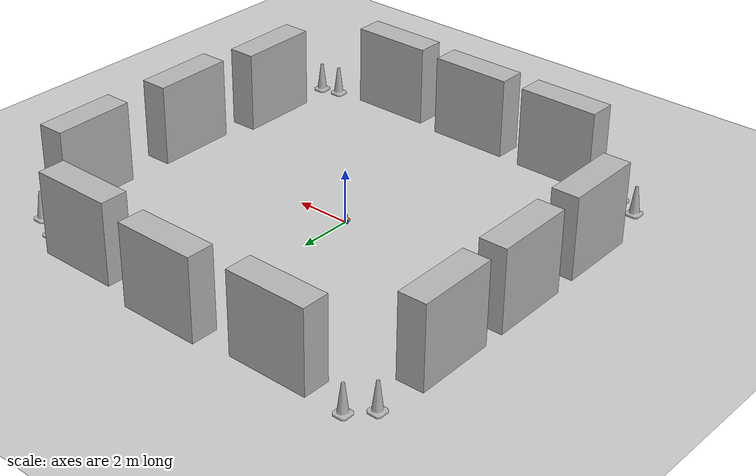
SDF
<sdf version="1.7">
 <world name="default">
  <light name="sun" type="directional">
   <pose>0 0 10 0 -0 0</pose>
   <diffuse>0.8 0.8 0.8 1</diffuse>
   <specular>0.2 0.2 0.2 1</specular>
   <attenuation>
    <range>1000</range>
    <constant>0.9</constant>
    <linear>0.01</linear>
    <quadratic>0.001</quadratic>
   </attenuation>
   <direction>-0.5 0.1 -0.9</direction>
   <spot><inner_angle>0</inner_angle><outer_angle>0</outer_angle><falloff>0</falloff></spot>
  </light>
  <model name="ground_plane">
   <static>1</static>
   <link name="link">
    <collision name="collision">
     <geometry><plane><normal>0 0 1</normal><size>100 100</size></plane></geometry>
     <surface>
      <contact><collide_bitmask>65535</collide_bitmask></contact>
      <friction><ode><mu>100</mu><mu2>50</mu2></ode></friction>
     </surface>
    </collision>
    <visual name="visual">
     <cast_shadows>0</cast_shadows>
     <geometry><plane><normal>0 0 1</normal><size>100 100</size></plane></geometry>
     <material>
      <script><uri>file://media/materials/scripts/gazebo.material</uri><name>Gazebo/Grey</name></script>
     </material>
    </visual>
   </link>
  </model>
  <gravity>0 0 -9.8</gravity>
  <magnetic_field>6e-06 2.3e-05 -4.2e-05</magnetic_field>
  <atmosphere type="adiabatic"/>
  <physics type="ode">
   <max_step_size>0.001</max_step_size>
   <real_time_factor>1</real_time_factor>
   <real_time_update_rate>1000</real_time_update_rate>
  </physics>
  <scene><ambient>0.4 0.4 0.4 1</ambient><background>0.7 0.7 0.7 1</background><shadows>1</shadows></scene>
  <spherical_coordinates>
   <surface_model>EARTH_WGS84</surface_model>
   <latitude_deg>0</latitude_deg>
   <longitude_deg>0</longitude_deg>
   <elevation>0</elevation>
   <heading_deg>0</heading_deg>
  </spherical_coordinates>
  <model name="my_bot">
   <link name="base_link">
    <inertial>
     <pose>0.039607 0 0.054361 0 -0 0</pose>
     <mass>0.61</mass>
     <inertia>
      <ixx>0.00444629</ixx>
      <ixy>0</ixy>
      <ixz>-0.000240607</ixz>
      <iyy>0.00451896</iyy>
      <iyz>0</iyz>
      <izz>0.00353276</izz>
     </inertia>
    </inertial>
    <collision name="base_link_fixed_joint_lump__chassis_collision">
     <pose>0.035 0 0.029 0 -0 0</pose>
     <geometry><box><size>0.2 0.2 0.1</size></box></geometry>
    </collision>
    <collision name="base_link_fixed_joint_lump__caster_wheel_collision_1">
     <pose>0.096 0 -0.044 0 -0 0</pose>
     <geometry><sphere><radius>0.021</radius></sphere></geometry>
     <surface><friction><ode><mu>0.001</mu><mu2>0.001</mu2></ode></friction></surface>
    </collision>
    <collision name="base_link_fixed_joint_lump__laser_frame_collision_2">
     <pose>0.057 0 0.191 0 -0 0</pose>
     <geometry><cylinder><length>0.04</length><radius>0.05</radius></cylinder></geometry>
    </collision>
    <visual name="base_link_fixed_joint_lump__chassis_visual">
     <pose>0.035 0 0.029 0 -0 0</pose>
     <geometry><box><size>0.2 0.2 0.1</size></box></geometry>
     <material>
      <script><name>Gazebo/Orange</name><uri>file://media/materials/scripts/gazebo.material</uri></script>
     </material>
    </visual>
    <visual name="base_link_fixed_joint_lump__camera_link_visual_1">
     <pose>0.111 0 0.12 0 0.18 0</pose>
     <geometry><box><size>0.01 0.03 0.03</size></box></geometry>
     <material>
      <script><name>Gazebo/Black</name><uri>file://media/materials/scripts/gazebo.material</uri></script>
     </material>
    </visual>
    <visual name="base_link_fixed_joint_lump__camera_link_visual_2">
     <pose>0.102049 0 0.070808 0 0.18 0</pose>
     <geometry><cylinder><length>0.1</length><radius>0.002</radius></cylinder></geometry>
     <material>
      <script><name>Gazebo/Black</name><uri>file://media/materials/scripts/gazebo.material</uri></script>
     </material>
    </visual>
    <visual name="base_link_fixed_joint_lump__caster_wheel_visual_3">
     <pose>0.096 0 -0.044 0 -0 0</pose>
     <geometry><sphere><radius>0.021</radius></sphere></geometry>
     <material>
      <script><name>Gazebo/White</name><uri>file://media/materials/scripts/gazebo.material</uri></script>
     </material>
    </visual>
    <visual name="base_link_fixed_joint_lump__laser_frame_visual_4">
     <pose>0.057 0 0.191 0 -0 0</pose>
     <geometry><cylinder><length>0.04</length><radius>0.05</radius></cylinder></geometry>
     <material>
      <script><name>Gazebo/Black</name><uri>file://media/materials/scripts/gazebo.material</uri></script>
     </material>
    </visual>
    <visual name="base_link_fixed_joint_lump__laser_frame_visual_5">
     <pose>0.057 0 0.141 0 -0 0</pose>
     <geometry><cylinder><length>0.1</length><radius>0.01</radius></cylinder></geometry>
     <material>
      <script><name>Gazebo/Black</name><uri>file://media/materials/scripts/gazebo.material</uri></script>
     </material>
    </visual>
    <sensor name="camera" type="camera">
     <visualize>1</visualize>
     <update_rate>10</update_rate>
     <camera>
      <horizontal_fov>1.089</horizontal_fov>
      <image><format>R8G8B8</format><width>640</width><height>480</height></image>
      <clip><near>0.05</near><far>8</far></clip>
     </camera>
     <plugin name="camera_controller" filename="libgazebo_ros_camera.so">
      <frame_name>camera_link_optical</frame_name>
     </plugin>
     <pose>0.111 0 0.12 0 0.18 0</pose>
    </sensor>
    <sensor name="laser" type="ray">
     <visualize>0</visualize>
     <update_rate>10</update_rate>
     <ray>
      <scan>
       <horizontal>
        <samples>360</samples>
        <min_angle>-3.14</min_angle>
        <max_angle>3.14</max_angle>
        <resolution>1</resolution>
       </horizontal>
       <vertical><samples>1</samples><min_angle>0</min_angle><max_angle>0</max_angle></vertical>
      </scan>
      <range><min>0.3</min><max>12</max></range>
     </ray>
     <plugin name="laser_controller" filename="libgazebo_ros_ray_sensor.so">
      <ros><argument>~/out:=scan</argument></ros>
      <output_type>sensor_msgs/LaserScan</output_type>
      <frame_name>laser_frame</frame_name>
     </plugin>
     <pose>0.057 0 0.191 0 -0 0</pose>
    </sensor>
   </link>
   <joint name="left_wheel_joint" type="revolute">
    <pose relative_to="base_link">0 0.11 0 -1.5708 0 0</pose>
    <parent>base_link</parent>
    <child>left_wheel</child>
    <axis>
     <xyz>0 0 1</xyz>
     <limit><lower>-1e+16</lower><upper>1e+16</upper></limit>
     <dynamics><spring_reference>0</spring_reference><spring_stiffness>0</spring_stiffness></dynamics>
    </axis>
   </joint>
   <link name="left_wheel">
    <pose relative_to="left_wheel_joint">0 0 0 0 -0 0</pose>
    <inertial>
     <mass>0.05</mass>
     <inertia>
      <ixx>5.44792e-05</ixx>
      <ixy>0</ixy>
      <ixz>0</ixz>
      <iyy>5.44792e-05</iyy>
      <iyz>0</iyz>
      <izz>0.000105625</izz>
     </inertia>
    </inertial>
    <collision name="left_wheel_collision">
     <geometry><sphere><radius>0.065</radius></sphere></geometry>
    </collision>
    <visual name="left_wheel_visual">
     <geometry><cylinder><length>0.02</length><radius>0.065</radius></cylinder></geometry>
     <material>
      <script><name>Gazebo/Blue</name><uri>file://media/materials/scripts/gazebo.material</uri></script>
     </material>
    </visual>
   </link>
   <joint name="right_wheel_joint" type="revolute">
    <pose relative_to="base_link">0 -0.11 0 1.5708 -0 0</pose>
    <parent>base_link</parent>
    <child>right_wheel</child>
    <axis>
     <xyz>0 0 -1</xyz>
     <limit><lower>-1e+16</lower><upper>1e+16</upper></limit>
     <dynamics><spring_reference>0</spring_reference><spring_stiffness>0</spring_stiffness></dynamics>
    </axis>
   </joint>
   <link name="right_wheel">
    <pose relative_to="right_wheel_joint">0 0 0 0 -0 0</pose>
    <inertial>
     <mass>0.05</mass>
     <inertia>
      <ixx>5.44792e-05</ixx>
      <ixy>0</ixy>
      <ixz>0</ixz>
      <iyy>5.44792e-05</iyy>
      <iyz>0</iyz>
      <izz>0.000105625</izz>
     </inertia>
    </inertial>
    <collision name="right_wheel_collision">
     <geometry><sphere><radius>0.065</radius></sphere></geometry>
    </collision>
    <visual name="right_wheel_visual">
     <geometry><cylinder><length>0.02</length><radius>0.065</radius></cylinder></geometry>
     <material>
      <script><name>Gazebo/Blue</name><uri>file://media/materials/scripts/gazebo.material</uri></script>
     </material>
    </visual>
   </link>
   <static>0</static>
   <plugin name="gazebo_ros2_control" filename="libgazebo_ros2_control.so">
    <parameters>/home/sampath/sam_ws/install/articubot_one/share/articubot_one/config/my_controllers.yaml</parameters>
    <parameters>/home/sampath/sam_ws/install/articubot_one/share/articubot_one/config/gaz_ros2_ctl_use_sim.yaml</parameters>
   </plugin>
   <pose>0.004524 0.009408 0.064998 -1.7e-05 -2.3e-05 -1.58602</pose>
  </model>
  <model name="Construction Cone">
   <link name="link">
    <collision name="collision">
     <geometry>
      <mesh><scale>10 10 10</scale><uri>model://construction_cone/meshes/construction_cone.dae</uri></mesh>
     </geometry>
    </collision>
    <visual name="visual">
     <geometry>
      <mesh><scale>10 10 10</scale><uri>model://construction_cone/meshes/construction_cone.dae</uri></mesh>
     </geometry>
    </visual>
    <inertial>
     <inertia><ixx>1</ixx><ixy>0</ixy><ixz>0</ixz><iyy>1</iyy><iyz>0</iyz><izz>1</izz></inertia>
     <mass>1</mass>
    </inertial>
   </link>
   <pose>7.74205 6.58345 -3e-06 -3e-06 -1e-06 -0</pose>
  </model>
  <model name="Construction Cone_0">
   <link name="link">
    <collision name="collision">
     <geometry>
      <mesh><scale>10 10 10</scale><uri>model://construction_cone/meshes/construction_cone.dae</uri></mesh>
     </geometry>
    </collision>
    <visual name="visual">
     <geometry>
      <mesh><scale>10 10 10</scale><uri>model://construction_cone/meshes/construction_cone.dae</uri></mesh>
     </geometry>
    </visual>
    <inertial>
     <inertia><ixx>1</ixx><ixy>0</ixy><ixz>0</ixz><iyy>1</iyy><iyz>0</iyz><izz>1</izz></inertia>
     <mass>1</mass>
    </inertial>
   </link>
   <pose>6.6957 7.05514 -1e-05 0 -0 0</pose>
  </model>
  <model name="Construction Cone_1">
   <link name="link">
    <collision name="collision">
     <geometry>
      <mesh><scale>10 10 10</scale><uri>model://construction_cone/meshes/construction_cone.dae</uri></mesh>
     </geometry>
    </collision>
    <visual name="visual">
     <geometry>
      <mesh><scale>10 10 10</scale><uri>model://construction_cone/meshes/construction_cone.dae</uri></mesh>
     </geometry>
    </visual>
    <inertial>
     <inertia><ixx>1</ixx><ixy>0</ixy><ixz>0</ixz><iyy>1</iyy><iyz>0</iyz><izz>1</izz></inertia>
     <mass>1</mass>
    </inertial>
   </link>
   <pose>7.45714 -7.07959 -0 0 -0 0</pose>
  </model>
  <model name="Construction Cone_2">
   <link name="link">
    <collision name="collision">
     <geometry>
      <mesh><scale>10 10 10</scale><uri>model://construction_cone/meshes/construction_cone.dae</uri></mesh>
     </geometry>
    </collision>
    <visual name="visual">
     <geometry>
      <mesh><scale>10 10 10</scale><uri>model://construction_cone/meshes/construction_cone.dae</uri></mesh>
     </geometry>
    </visual>
    <inertial>
     <inertia><ixx>1</ixx><ixy>0</ixy><ixz>0</ixz><iyy>1</iyy><iyz>0</iyz><izz>1</izz></inertia>
     <mass>1</mass>
    </inertial>
   </link>
   <pose>6.74472 -7.25057 -3e-06 -3e-06 -1e-06 -0</pose>
  </model>
  <model name="Construction Cone_3">
   <link name="link">
    <collision name="collision">
     <geometry>
      <mesh><scale>10 10 10</scale><uri>model://construction_cone/meshes/construction_cone.dae</uri></mesh>
     </geometry>
    </collision>
    <visual name="visual">
     <geometry>
      <mesh><scale>10 10 10</scale><uri>model://construction_cone/meshes/construction_cone.dae</uri></mesh>
     </geometry>
    </visual>
    <inertial>
     <inertia><ixx>1</ixx><ixy>0</ixy><ixz>0</ixz><iyy>1</iyy><iyz>0</iyz><izz>1</izz></inertia>
     <mass>1</mass>
    </inertial>
   </link>
   <pose>-6.79074 7.7951 -1e-06 2e-06 2e-06 0</pose>
  </model>
  <model name="Construction Cone_4">
   <link name="link">
    <collision name="collision">
     <geometry>
      <mesh><scale>10 10 10</scale><uri>model://construction_cone/meshes/construction_cone.dae</uri></mesh>
     </geometry>
    </collision>
    <visual name="visual">
     <geometry>
      <mesh><scale>10 10 10</scale><uri>model://construction_cone/meshes/construction_cone.dae</uri></mesh>
     </geometry>
    </visual>
    <inertial>
     <inertia><ixx>1</ixx><ixy>0</ixy><ixz>0</ixz><iyy>1</iyy><iyz>0</iyz><izz>1</izz></inertia>
     <mass>1</mass>
    </inertial>
   </link>
   <pose>-7.44609 7.08271 -9e-06 -1e-06 -0 -0</pose>
  </model>
  <model name="Construction Cone_5">
   <link name="link">
    <collision name="collision">
     <geometry>
      <mesh><scale>10 10 10</scale><uri>model://construction_cone/meshes/construction_cone.dae</uri></mesh>
     </geometry>
    </collision>
    <visual name="visual">
     <geometry>
      <mesh><scale>10 10 10</scale><uri>model://construction_cone/meshes/construction_cone.dae</uri></mesh>
     </geometry>
    </visual>
    <inertial>
     <inertia><ixx>1</ixx><ixy>0</ixy><ixz>0</ixz><iyy>1</iyy><iyz>0</iyz><izz>1</izz></inertia>
     <mass>1</mass>
    </inertial>
   </link>
   <pose>-6.12186 -7.30755 -1e-05 -1e-06 0 0</pose>
  </model>
  <model name="Construction Cone_6">
   <link name="link">
    <collision name="collision">
     <geometry>
      <mesh><scale>10 10 10</scale><uri>model://construction_cone/meshes/construction_cone.dae</uri></mesh>
     </geometry>
    </collision>
    <visual name="visual">
     <geometry>
      <mesh><scale>10 10 10</scale><uri>model://construction_cone/meshes/construction_cone.dae</uri></mesh>
     </geometry>
    </visual>
    <inertial>
     <inertia><ixx>1</ixx><ixy>0</ixy><ixz>0</ixz><iyy>1</iyy><iyz>0</iyz><izz>1</izz></inertia>
     <mass>1</mass>
    </inertial>
   </link>
   <pose>-6.93934 -6.88012 -1e-05 -1e-06 0 0</pose>
  </model>
  <model name="brick_box_3x1x3">
   <static>1</static>
   <link name="chassis">
    <pose>0 0 1.5 0 -0 0</pose>
    <collision name="collision"><geometry><box><size>3 1 3</size></box></geometry></collision>
    <visual name="visual">
     <geometry><mesh><uri>model://brick_box_3x1x3/meshes/simple_box.dae</uri><scale>3 1 3</scale></mesh></geometry>
     <material>
      <script>
       <uri>model://brick_box_3x1x3/materials/scripts</uri>
       <uri>model://brick_box_3x1x3/materials/textures</uri>
       <name>BrickBox/Diffuse</name>
      </script>
     </material>
    </visual>
   </link>
   <pose>-3.40277 -7.63834 0 0 -0 0</pose>
  </model>
  <model name="brick_box_3x1x3_clone">
   <static>1</static>
   <link name="chassis">
    <pose>0 0 1.5 0 -0 0</pose>
    <collision name="collision"><geometry><box><size>3 1 3</size></box></geometry></collision>
    <visual name="visual">
     <geometry><mesh><uri>model://brick_box_3x1x3/meshes/simple_box.dae</uri><scale>3 1 3</scale></mesh></geometry>
     <material>
      <script>
       <uri>model://brick_box_3x1x3/materials/scripts</uri>
       <uri>model://brick_box_3x1x3/materials/textures</uri>
       <name>BrickBox/Diffuse</name>
      </script>
     </material>
    </visual>
   </link>
   <pose>0.407554 -7.6935 0 0 -0 0</pose>
  </model>
  <model name="brick_box_3x1x3_clone_0">
   <static>1</static>
   <link name="chassis">
    <pose>0 0 1.5 0 -0 0</pose>
    <collision name="collision"><geometry><box><size>3 1 3</size></box></geometry></collision>
    <visual name="visual">
     <geometry><mesh><uri>model://brick_box_3x1x3/meshes/simple_box.dae</uri><scale>3 1 3</scale></mesh></geometry>
     <material>
      <script>
       <uri>model://brick_box_3x1x3/materials/scripts</uri>
       <uri>model://brick_box_3x1x3/materials/textures</uri>
       <name>BrickBox/Diffuse</name>
      </script>
     </material>
    </visual>
   </link>
   <pose>4.22374 -7.85877 0 0 -0 0</pose>
  </model>
  <model name="brick_box_3x1x3_clone_1">
   <static>1</static>
   <link name="chassis">
    <pose>0 0 1.5 0 -0 0</pose>
    <collision name="collision"><geometry><box><size>3 1 3</size></box></geometry></collision>
    <visual name="visual">
     <geometry><mesh><uri>model://brick_box_3x1x3/meshes/simple_box.dae</uri><scale>3 1 3</scale></mesh></geometry>
     <material>
      <script>
       <uri>model://brick_box_3x1x3/materials/scripts</uri>
       <uri>model://brick_box_3x1x3/materials/textures</uri>
       <name>BrickBox/Diffuse</name>
      </script>
     </material>
    </visual>
   </link>
   <pose>-3.99077 7.44552 0 0 -0 0</pose>
  </model>
  <model name="brick_box_3x1x3_clone_2">
   <static>1</static>
   <link name="chassis">
    <pose>0 0 1.5 0 -0 0</pose>
    <collision name="collision"><geometry><box><size>3 1 3</size></box></geometry></collision>
    <visual name="visual">
     <geometry><mesh><uri>model://brick_box_3x1x3/meshes/simple_box.dae</uri><scale>3 1 3</scale></mesh></geometry>
     <material>
      <script>
       <uri>model://brick_box_3x1x3/materials/scripts</uri>
       <uri>model://brick_box_3x1x3/materials/textures</uri>
       <name>BrickBox/Diffuse</name>
      </script>
     </material>
    </visual>
   </link>
   <pose>0.232111 7.74643 0 0 -0 0</pose>
  </model>
  <model name="brick_box_3x1x3_clone_3">
   <static>1</static>
   <link name="chassis">
    <pose>0 0 1.5 0 -0 0</pose>
    <collision name="collision"><geometry><box><size>3 1 3</size></box></geometry></collision>
    <visual name="visual">
     <geometry><mesh><uri>model://brick_box_3x1x3/meshes/simple_box.dae</uri><scale>3 1 3</scale></mesh></geometry>
     <material>
      <script>
       <uri>model://brick_box_3x1x3/materials/scripts</uri>
       <uri>model://brick_box_3x1x3/materials/textures</uri>
       <name>BrickBox/Diffuse</name>
      </script>
     </material>
    </visual>
   </link>
   <pose>4.44801 7.34317 0 0 -0 0</pose>
  </model>
  <model name="brick_box_3x1x3_clone_4">
   <static>1</static>
   <link name="chassis">
    <pose>0 0 1.5 0 -0 0</pose>
    <collision name="collision"><geometry><box><size>3 1 3</size></box></geometry></collision>
    <visual name="visual">
     <geometry><mesh><uri>model://brick_box_3x1x3/meshes/simple_box.dae</uri><scale>3 1 3</scale></mesh></geometry>
     <material>
      <script>
       <uri>model://brick_box_3x1x3/materials/scripts</uri>
       <uri>model://brick_box_3x1x3/materials/textures</uri>
       <name>BrickBox/Diffuse</name>
      </script>
     </material>
    </visual>
   </link>
   <pose>7.58959 -4.29756 0 0 0 -1.55324</pose>
  </model>
  <model name="brick_box_3x1x3_clone_4_clone">
   <static>1</static>
   <link name="chassis">
    <pose>0 0 1.5 0 -0 0</pose>
    <collision name="collision"><geometry><box><size>3 1 3</size></box></geometry></collision>
    <visual name="visual">
     <geometry><mesh><uri>model://brick_box_3x1x3/meshes/simple_box.dae</uri><scale>3 1 3</scale></mesh></geometry>
     <material>
      <script>
       <uri>model://brick_box_3x1x3/materials/scripts</uri>
       <uri>model://brick_box_3x1x3/materials/textures</uri>
       <name>BrickBox/Diffuse</name>
      </script>
     </material>
    </visual>
   </link>
   <pose>8.00578 -0.346946 0 0 0 -1.55324</pose>
  </model>
  <model name="brick_box_3x1x3_clone_4_clone_0">
   <static>1</static>
   <link name="chassis">
    <pose>0 0 1.5 0 -0 0</pose>
    <collision name="collision"><geometry><box><size>3 1 3</size></box></geometry></collision>
    <visual name="visual">
     <geometry><mesh><uri>model://brick_box_3x1x3/meshes/simple_box.dae</uri><scale>3 1 3</scale></mesh></geometry>
     <material>
      <script>
       <uri>model://brick_box_3x1x3/materials/scripts</uri>
       <uri>model://brick_box_3x1x3/materials/textures</uri>
       <name>BrickBox/Diffuse</name>
      </script>
     </material>
    </visual>
   </link>
   <pose>8.02879 4.22789 0 0 0 -1.55324</pose>
  </model>
  <model name="brick_box_3x1x3_clone_4_clone_1">
   <static>1</static>
   <link name="chassis">
    <pose>0 0 1.5 0 -0 0</pose>
    <collision name="collision"><geometry><box><size>3 1 3</size></box></geometry></collision>
    <visual name="visual">
     <geometry><mesh><uri>model://brick_box_3x1x3/meshes/simple_box.dae</uri><scale>3 1 3</scale></mesh></geometry>
     <material>
      <script>
       <uri>model://brick_box_3x1x3/materials/scripts</uri>
       <uri>model://brick_box_3x1x3/materials/textures</uri>
       <name>BrickBox/Diffuse</name>
      </script>
     </material>
    </visual>
   </link>
   <pose>-7.32737 4.08136 0 0 0 -1.55324</pose>
  </model>
  <model name="brick_box_3x1x3_clone_4_clone_2">
   <static>1</static>
   <link name="chassis">
    <pose>0 0 1.5 0 -0 0</pose>
    <collision name="collision"><geometry><box><size>3 1 3</size></box></geometry></collision>
    <visual name="visual">
     <geometry><mesh><uri>model://brick_box_3x1x3/meshes/simple_box.dae</uri><scale>3 1 3</scale></mesh></geometry>
     <material>
      <script>
       <uri>model://brick_box_3x1x3/materials/scripts</uri>
       <uri>model://brick_box_3x1x3/materials/textures</uri>
       <name>BrickBox/Diffuse</name>
      </script>
     </material>
    </visual>
   </link>
   <pose>-7.28286 0.316 0 0 0 -1.55324</pose>
  </model>
  <model name="brick_box_3x1x3_clone_4_clone_3">
   <static>1</static>
   <link name="chassis">
    <pose>0 0 1.5 0 -0 0</pose>
    <collision name="collision"><geometry><box><size>3 1 3</size></box></geometry></collision>
    <visual name="visual">
     <geometry><mesh><uri>model://brick_box_3x1x3/meshes/simple_box.dae</uri><scale>3 1 3</scale></mesh></geometry>
     <material>
      <script>
       <uri>model://brick_box_3x1x3/materials/scripts</uri>
       <uri>model://brick_box_3x1x3/materials/textures</uri>
       <name>BrickBox/Diffuse</name>
      </script>
     </material>
    </visual>
   </link>
   <pose>-7.16355 -3.54437 0 0 0 -1.55324</pose>
  </model>
 </world>
</sdf>
